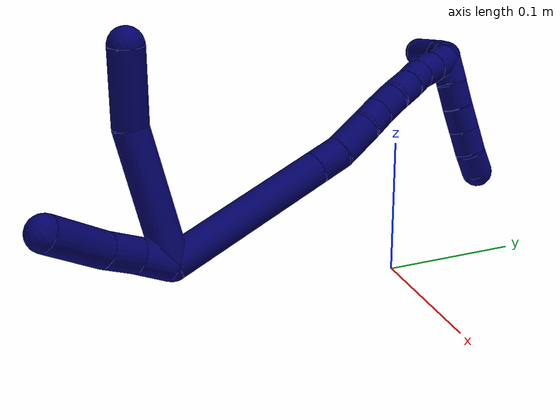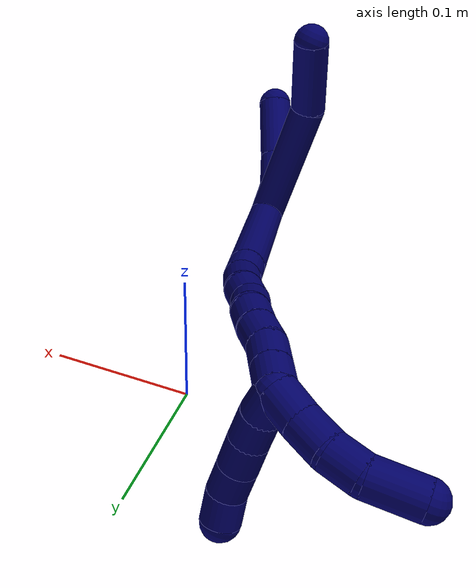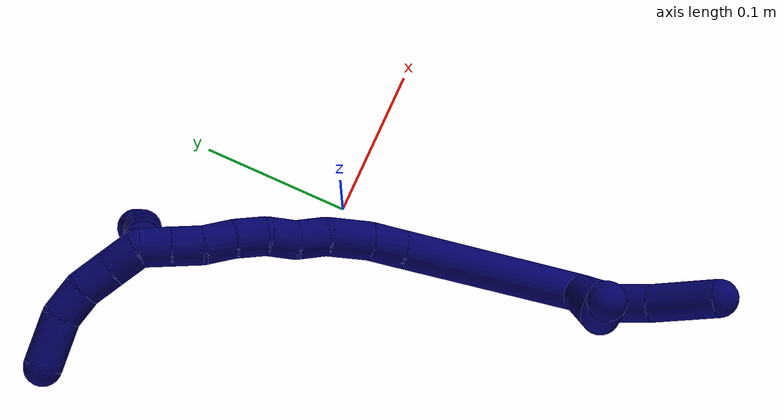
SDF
<sdf version="1.7">
 <world name="default">
  <model name="7">
   <static>0</static>
   <link name="7">
    <collision name="collision-cylinder-e_1_2_8">
     <pose>0.00369 0.010891 0.04611 -0.231955 0.077725 -0.009059</pose>
     <geometry><cylinder><radius>0.0125</radius><length>0.095044</length></cylinder></geometry>
     <surface>
      <friction><ode><mu>1.16</mu><mu2>1.16</mu2><slip1>0</slip1><slip2>0</slip2></ode></friction>
      <contact><ode><kp>1e+06</kp><kd>1</kd><max_vel>0</max_vel><min_depth>0.001</min_depth></ode></contact>
     </surface>
    </collision>
    <visual name="visual-cylinder-e_1_2_8">
     <pose>0.00369 0.010891 0.04611 -0.231955 0.077725 -0.009059</pose>
     <geometry><cylinder><radius>0.0125</radius><length>0.095044</length></cylinder></geometry>
     <material><ambient>0.003922 0 0.403922 1</ambient></material>
    </visual>
    <collision name="collision-cylinder-e_2_8_6">
     <pose>0.017238 0.031055 0.116133 -0.369875 0.366942 -0.069399</pose>
     <geometry><cylinder><radius>0.0125</radius><length>0.054956</length></cylinder></geometry>
     <surface>
      <friction><ode><mu>1.16</mu><mu2>1.16</mu2><slip1>0</slip1><slip2>0</slip2></ode></friction>
      <contact><ode><kp>1e+06</kp><kd>1</kd><max_vel>0</max_vel><min_depth>0.001</min_depth></ode></contact>
     </surface>
    </collision>
    <visual name="visual-cylinder-e_2_8_6">
     <pose>0.017238 0.031055 0.116133 -0.369875 0.366942 -0.069399</pose>
     <geometry><cylinder><radius>0.0125</radius><length>0.054956</length></cylinder></geometry>
     <material><ambient>0.003922 0 0.403922 1</ambient></material>
    </visual>
    <collision name="collision-cylinder-e_1_2_9">
     <pose>0.000245 -0.00868 0.009297 0.751119 0.019262 0.007595</pose>
     <geometry><cylinder><radius>0.0125</radius><length>0.025442</length></cylinder></geometry>
     <surface>
      <friction><ode><mu>1.16</mu><mu2>1.16</mu2><slip1>0</slip1><slip2>0</slip2></ode></friction>
      <contact><ode><kp>1e+06</kp><kd>1</kd><max_vel>0</max_vel><min_depth>0.001</min_depth></ode></contact>
     </surface>
    </collision>
    <visual name="visual-cylinder-e_1_2_9">
     <pose>0.000245 -0.00868 0.009297 0.751119 0.019262 0.007595</pose>
     <geometry><cylinder><radius>0.0125</radius><length>0.025442</length></cylinder></geometry>
     <material><ambient>0.003922 0 0.403922 1</ambient></material>
    </visual>
    <collision name="collision-cylinder-e_2_9_10">
     <pose>0.004191 -0.02676 0.027384 0.81883 0.280039 0.122167</pose>
     <geometry><cylinder><radius>0.0125</radius><length>0.026784</length></cylinder></geometry>
     <surface>
      <friction><ode><mu>1.16</mu><mu2>1.16</mu2><slip1>0</slip1><slip2>0</slip2></ode></friction>
      <contact><ode><kp>1e+06</kp><kd>1</kd><max_vel>0</max_vel><min_depth>0.001</min_depth></ode></contact>
     </surface>
    </collision>
    <visual name="visual-cylinder-e_2_9_10">
     <pose>0.004191 -0.02676 0.027384 0.81883 0.280039 0.122167</pose>
     <geometry><cylinder><radius>0.0125</radius><length>0.026784</length></cylinder></geometry>
     <material><ambient>0.003922 0 0.403922 1</ambient></material>
    </visual>
    <collision name="collision-cylinder-e_3_10_5">
     <pose>0.016207 -0.051081 0.052873 0.729302 0.355513 0.13694</pose>
     <geometry><cylinder><radius>0.0125</radius><length>0.047774</length></cylinder></geometry>
     <surface>
      <friction><ode><mu>1.16</mu><mu2>1.16</mu2><slip1>0</slip1><slip2>0</slip2></ode></friction>
      <contact><ode><kp>1e+06</kp><kd>1</kd><max_vel>0</max_vel><min_depth>0.001</min_depth></ode></contact>
     </surface>
    </collision>
    <visual name="visual-cylinder-e_3_10_5">
     <pose>0.016207 -0.051081 0.052873 0.729302 0.355513 0.13694</pose>
     <geometry><cylinder><radius>0.0125</radius><length>0.047774</length></cylinder></geometry>
     <material><ambient>0.003922 0 0.403922 1</ambient></material>
    </visual>
    <collision name="collision-cylinder-e_1_2_11">
     <pose>0.005305 0.062622 -0.002198 -1.60588 0.084465 -0.087478</pose>
     <geometry><cylinder><radius>0.0125</radius><length>0.12577</length></cylinder></geometry>
     <surface>
      <friction><ode><mu>1.16</mu><mu2>1.16</mu2><slip1>0</slip1><slip2>0</slip2></ode></friction>
      <contact><ode><kp>1e+06</kp><kd>1</kd><max_vel>0</max_vel><min_depth>0.001</min_depth></ode></contact>
     </surface>
    </collision>
    <visual name="visual-cylinder-e_1_2_11">
     <pose>0.005305 0.062622 -0.002198 -1.60588 0.084465 -0.087478</pose>
     <geometry><cylinder><radius>0.0125</radius><length>0.12577</length></cylinder></geometry>
     <material><ambient>0.003922 0 0.403922 1</ambient></material>
    </visual>
    <collision name="collision-cylinder-e_2_11_12">
     <pose>0.011617 0.136577 -0.004787 -1.60528 0.088517 -0.091619</pose>
     <geometry><cylinder><radius>0.0125</radius><length>0.022767</length></cylinder></geometry>
     <surface>
      <friction><ode><mu>1.16</mu><mu2>1.16</mu2><slip1>0</slip1><slip2>0</slip2></ode></friction>
      <contact><ode><kp>1e+06</kp><kd>1</kd><max_vel>0</max_vel><min_depth>0.001</min_depth></ode></contact>
     </surface>
    </collision>
    <visual name="visual-cylinder-e_2_11_12">
     <pose>0.011617 0.136577 -0.004787 -1.60528 0.088517 -0.091619</pose>
     <geometry><cylinder><radius>0.0125</radius><length>0.022767</length></cylinder></geometry>
     <material><ambient>0.003922 0 0.403922 1</ambient></material>
    </visual>
    <collision name="collision-cylinder-e_3_12_13">
     <pose>0.012369 0.162994 -0.003248 -1.44353 -0.016682 0.014684</pose>
     <geometry><cylinder><radius>0.0125</radius><length>0.030419</length></cylinder></geometry>
     <surface>
      <friction><ode><mu>1.16</mu><mu2>1.16</mu2><slip1>0</slip1><slip2>0</slip2></ode></friction>
      <contact><ode><kp>1e+06</kp><kd>1</kd><max_vel>0</max_vel><min_depth>0.001</min_depth></ode></contact>
     </surface>
    </collision>
    <visual name="visual-cylinder-e_3_12_13">
     <pose>0.012369 0.162994 -0.003248 -1.44353 -0.016682 0.014684</pose>
     <geometry><cylinder><radius>0.0125</radius><length>0.030419</length></cylinder></geometry>
     <material><ambient>0.003922 0 0.403922 1</ambient></material>
    </visual>
    <collision name="collision-cylinder-e_4_13_14">
     <pose>0.009634 0.187843 -0.000789 -1.51672 -0.248578 0.235612</pose>
     <geometry><cylinder><radius>0.0125</radius><length>0.020178</length></cylinder></geometry>
     <surface>
      <friction><ode><mu>1.16</mu><mu2>1.16</mu2><slip1>0</slip1><slip2>0</slip2></ode></friction>
      <contact><ode><kp>1e+06</kp><kd>1</kd><max_vel>0</max_vel><min_depth>0.001</min_depth></ode></contact>
     </surface>
    </collision>
    <visual name="visual-cylinder-e_4_13_14">
     <pose>0.009634 0.187843 -0.000789 -1.51672 -0.248578 0.235612</pose>
     <geometry><cylinder><radius>0.0125</radius><length>0.020178</length></cylinder></geometry>
     <material><ambient>0.003922 0 0.403922 1</ambient></material>
    </visual>
    <collision name="collision-cylinder-e_5_14_15">
     <pose>0.007281 0.20765 0.000916 -1.45421 0.012774 -0.011366</pose>
     <geometry><cylinder><radius>0.0125</radius><length>0.020223</length></cylinder></geometry>
     <surface>
      <friction><ode><mu>1.16</mu><mu2>1.16</mu2><slip1>0</slip1><slip2>0</slip2></ode></friction>
      <contact><ode><kp>1e+06</kp><kd>1</kd><max_vel>0</max_vel><min_depth>0.001</min_depth></ode></contact>
     </surface>
    </collision>
    <visual name="visual-cylinder-e_5_14_15">
     <pose>0.007281 0.20765 0.000916 -1.45421 0.012774 -0.011366</pose>
     <geometry><cylinder><radius>0.0125</radius><length>0.020223</length></cylinder></geometry>
     <material><ambient>0.003922 0 0.403922 1</ambient></material>
    </visual>
    <collision name="collision-cylinder-e_6_15_16">
     <pose>0.005 0.227578 0.00183 -1.59726 -0.238968 0.245314</pose>
     <geometry><cylinder><radius>0.0125</radius><length>0.020358</length></cylinder></geometry>
     <surface>
      <friction><ode><mu>1.16</mu><mu2>1.16</mu2><slip1>0</slip1><slip2>0</slip2></ode></friction>
      <contact><ode><kp>1e+06</kp><kd>1</kd><max_vel>0</max_vel><min_depth>0.001</min_depth></ode></contact>
     </surface>
    </collision>
    <visual name="visual-cylinder-e_6_15_16">
     <pose>0.005 0.227578 0.00183 -1.59726 -0.238968 0.245314</pose>
     <geometry><cylinder><radius>0.0125</radius><length>0.020358</length></cylinder></geometry>
     <material><ambient>0.003922 0 0.403922 1</ambient></material>
    </visual>
    <collision name="collision-cylinder-e_7_16_17">
     <pose>-0.000987 0.246944 0.001383 -1.59035 -0.360867 0.367836</pose>
     <geometry><cylinder><radius>0.0125</radius><length>0.020266</length></cylinder></geometry>
     <surface>
      <friction><ode><mu>1.16</mu><mu2>1.16</mu2><slip1>0</slip1><slip2>0</slip2></ode></friction>
      <contact><ode><kp>1e+06</kp><kd>1</kd><max_vel>0</max_vel><min_depth>0.001</min_depth></ode></contact>
     </surface>
    </collision>
    <visual name="visual-cylinder-e_7_16_17">
     <pose>-0.000987 0.246944 0.001383 -1.59035 -0.360867 0.367836</pose>
     <geometry><cylinder><radius>0.0125</radius><length>0.020266</length></cylinder></geometry>
     <material><ambient>0.003922 0 0.403922 1</ambient></material>
    </visual>
    <collision name="collision-cylinder-e_8_17_18">
     <pose>-0.006774 0.266053 -0.000379 -1.73301 -0.222592 0.261567</pose>
     <geometry><cylinder><radius>0.0125</radius><length>0.020012</length></cylinder></geometry>
     <surface>
      <friction><ode><mu>1.16</mu><mu2>1.16</mu2><slip1>0</slip1><slip2>0</slip2></ode></friction>
      <contact><ode><kp>1e+06</kp><kd>1</kd><max_vel>0</max_vel><min_depth>0.001</min_depth></ode></contact>
     </surface>
    </collision>
    <visual name="visual-cylinder-e_8_17_18">
     <pose>-0.006774 0.266053 -0.000379 -1.73301 -0.222592 0.261567</pose>
     <geometry><cylinder><radius>0.0125</radius><length>0.020012</length></cylinder></geometry>
     <material><ambient>0.003922 0 0.403922 1</ambient></material>
    </visual>
    <collision name="collision-cylinder-e_9_18_1">
     <pose>-0.011162 0.285321 -0.003517 -1.73153 -0.219657 0.257747</pose>
     <geometry><cylinder><radius>0.0125</radius><length>0.020005</length></cylinder></geometry>
     <surface>
      <friction><ode><mu>1.16</mu><mu2>1.16</mu2><slip1>0</slip1><slip2>0</slip2></ode></friction>
      <contact><ode><kp>1e+06</kp><kd>1</kd><max_vel>0</max_vel><min_depth>0.001</min_depth></ode></contact>
     </surface>
    </collision>
    <visual name="visual-cylinder-e_9_18_1">
     <pose>-0.011162 0.285321 -0.003517 -1.73153 -0.219657 0.257747</pose>
     <geometry><cylinder><radius>0.0125</radius><length>0.020005</length></cylinder></geometry>
     <material><ambient>0.003922 0 0.403922 1</ambient></material>
    </visual>
    <collision name="collision-cylinder-e_1_1_19">
     <pose>-0.021575 0.301827 -0.007444 -1.90228 -0.847749 1.12796</pose>
     <geometry><cylinder><radius>0.0125</radius><length>0.021961</length></cylinder></geometry>
     <surface>
      <friction><ode><mu>1.16</mu><mu2>1.16</mu2><slip1>0</slip1><slip2>0</slip2></ode></friction>
      <contact><ode><kp>1e+06</kp><kd>1</kd><max_vel>0</max_vel><min_depth>0.001</min_depth></ode></contact>
     </surface>
    </collision>
    <visual name="visual-cylinder-e_1_1_19">
     <pose>-0.021575 0.301827 -0.007444 -1.90228 -0.847749 1.12796</pose>
     <geometry><cylinder><radius>0.0125</radius><length>0.021961</length></cylinder></geometry>
     <material><ambient>0.003922 0 0.403922 1</ambient></material>
    </visual>
    <collision name="collision-cylinder-e_2_19_20">
     <pose>-0.038153 0.316162 -0.010944 -1.72169 -0.835397 0.953363</pose>
     <geometry><cylinder><radius>0.0125</radius><length>0.022508</length></cylinder></geometry>
     <surface>
      <friction><ode><mu>1.16</mu><mu2>1.16</mu2><slip1>0</slip1><slip2>0</slip2></ode></friction>
      <contact><ode><kp>1e+06</kp><kd>1</kd><max_vel>0</max_vel><min_depth>0.001</min_depth></ode></contact>
     </surface>
    </collision>
    <visual name="visual-cylinder-e_2_19_20">
     <pose>-0.038153 0.316162 -0.010944 -1.72169 -0.835397 0.953363</pose>
     <geometry><cylinder><radius>0.0125</radius><length>0.022508</length></cylinder></geometry>
     <material><ambient>0.003922 0 0.403922 1</ambient></material>
    </visual>
    <collision name="collision-cylinder-e_3_20_21">
     <pose>-0.056238 0.328695 -0.012349 -1.62416 -1.09031 1.13823</pose>
     <geometry><cylinder><radius>0.0125</radius><length>0.021965</length></cylinder></geometry>
     <surface>
      <friction><ode><mu>1.16</mu><mu2>1.16</mu2><slip1>0</slip1><slip2>0</slip2></ode></friction>
      <contact><ode><kp>1e+06</kp><kd>1</kd><max_vel>0</max_vel><min_depth>0.001</min_depth></ode></contact>
     </surface>
    </collision>
    <visual name="visual-cylinder-e_3_20_21">
     <pose>-0.056238 0.328695 -0.012349 -1.62416 -1.09031 1.13823</pose>
     <geometry><cylinder><radius>0.0125</radius><length>0.021965</length></cylinder></geometry>
     <material><ambient>0.003922 0 0.403922 1</ambient></material>
    </visual>
    <collision name="collision-cylinder-e_4_21_4">
     <pose>-0.082341 0.336913 -0.01063 -1.00723 -1.34695 0.828442</pose>
     <geometry><cylinder><radius>0.0125</radius><length>0.033566</length></cylinder></geometry>
     <surface>
      <friction><ode><mu>1.16</mu><mu2>1.16</mu2><slip1>0</slip1><slip2>0</slip2></ode></friction>
      <contact><ode><kp>1e+06</kp><kd>1</kd><max_vel>0</max_vel><min_depth>0.001</min_depth></ode></contact>
     </surface>
    </collision>
    <visual name="visual-cylinder-e_4_21_4">
     <pose>-0.082341 0.336913 -0.01063 -1.00723 -1.34695 0.828442</pose>
     <geometry><cylinder><radius>0.0125</radius><length>0.033566</length></cylinder></geometry>
     <material><ambient>0.003922 0 0.403922 1</ambient></material>
    </visual>
    <collision name="collision-cylinder-e_1_1_22">
     <pose>-0.012912 0.291867 -0.01458 2.82714 0.042987 0.269546</pose>
     <geometry><cylinder><radius>0.0125</radius><length>0.02</length></cylinder></geometry>
     <surface>
      <friction><ode><mu>1.16</mu><mu2>1.16</mu2><slip1>0</slip1><slip2>0</slip2></ode></friction>
      <contact><ode><kp>1e+06</kp><kd>1</kd><max_vel>0</max_vel><min_depth>0.001</min_depth></ode></contact>
     </surface>
    </collision>
    <visual name="visual-cylinder-e_1_1_22">
     <pose>-0.012912 0.291867 -0.01458 2.82714 0.042987 0.269546</pose>
     <geometry><cylinder><radius>0.0125</radius><length>0.02</length></cylinder></geometry>
     <material><ambient>0.003922 0 0.403922 1</ambient></material>
    </visual>
    <collision name="collision-cylinder-e_2_22_23">
     <pose>-0.013164 0.286543 -0.033805 2.91571 -0.068207 -0.584373</pose>
     <geometry><cylinder><radius>0.0125</radius><length>0.02</length></cylinder></geometry>
     <surface>
      <friction><ode><mu>1.16</mu><mu2>1.16</mu2><slip1>0</slip1><slip2>0</slip2></ode></friction>
      <contact><ode><kp>1e+06</kp><kd>1</kd><max_vel>0</max_vel><min_depth>0.001</min_depth></ode></contact>
     </surface>
    </collision>
    <visual name="visual-cylinder-e_2_22_23">
     <pose>-0.013164 0.286543 -0.033805 2.91571 -0.068207 -0.584373</pose>
     <geometry><cylinder><radius>0.0125</radius><length>0.02</length></cylinder></geometry>
     <material><ambient>0.003922 0 0.403922 1</ambient></material>
    </visual>
    <collision name="collision-cylinder-e_3_23_24">
     <pose>-0.014695 0.282567 -0.053339 2.96596 -0.08508 -0.90064</pose>
     <geometry><cylinder><radius>0.0125</radius><length>0.02</length></cylinder></geometry>
     <surface>
      <friction><ode><mu>1.16</mu><mu2>1.16</mu2><slip1>0</slip1><slip2>0</slip2></ode></friction>
      <contact><ode><kp>1e+06</kp><kd>1</kd><max_vel>0</max_vel><min_depth>0.001</min_depth></ode></contact>
     </surface>
    </collision>
    <visual name="visual-cylinder-e_3_23_24">
     <pose>-0.014695 0.282567 -0.053339 2.96596 -0.08508 -0.90064</pose>
     <geometry><cylinder><radius>0.0125</radius><length>0.02</length></cylinder></geometry>
     <material><ambient>0.003922 0 0.403922 1</ambient></material>
    </visual>
    <collision name="collision-cylinder-e_4_24_25">
     <pose>-0.016349 0.27899 -0.072946 2.95634 -0.08048 -0.817988</pose>
     <geometry><cylinder><radius>0.0125</radius><length>0.02</length></cylinder></geometry>
     <surface>
      <friction><ode><mu>1.16</mu><mu2>1.16</mu2><slip1>0</slip1><slip2>0</slip2></ode></friction>
      <contact><ode><kp>1e+06</kp><kd>1</kd><max_vel>0</max_vel><min_depth>0.001</min_depth></ode></contact>
     </surface>
    </collision>
    <visual name="visual-cylinder-e_4_24_25">
     <pose>-0.016349 0.27899 -0.072946 2.95634 -0.08048 -0.817988</pose>
     <geometry><cylinder><radius>0.0125</radius><length>0.02</length></cylinder></geometry>
     <material><ambient>0.003922 0 0.403922 1</ambient></material>
    </visual>
    <collision name="collision-cylinder-e_5_25_3">
     <pose>-0.01932 0.277201 -0.092506 -3.13675 -0.218416 3.09744</pose>
     <geometry><cylinder><radius>0.0125</radius><length>0.02</length></cylinder></geometry>
     <surface>
      <friction><ode><mu>1.16</mu><mu2>1.16</mu2><slip1>0</slip1><slip2>0</slip2></ode></friction>
      <contact><ode><kp>1e+06</kp><kd>1</kd><max_vel>0</max_vel><min_depth>0.001</min_depth></ode></contact>
     </surface>
    </collision>
    <visual name="visual-cylinder-e_5_25_3">
     <pose>-0.01932 0.277201 -0.092506 -3.13675 -0.218416 3.09744</pose>
     <geometry><cylinder><radius>0.0125</radius><length>0.02</length></cylinder></geometry>
     <material><ambient>0.003922 0 0.403922 1</ambient></material>
    </visual>
    <collision name="collision-sphere-3">
     <pose>-0.021486 0.277249 -0.102268 0 -0 0</pose>
     <geometry><sphere><radius>0.0125</radius></sphere></geometry>
     <surface>
      <friction><ode><mu>1.16</mu><mu2>1.16</mu2><slip1>0</slip1><slip2>0</slip2></ode></friction>
      <contact><ode><kp>1e+06</kp><kd>1</kd><max_vel>0</max_vel><min_depth>0.001</min_depth></ode></contact>
     </surface>
    </collision>
    <visual name="visual-sphere-3">
     <pose>-0.021486 0.277249 -0.102268 0 -0 0</pose>
     <geometry><sphere><radius>0.0125</radius></sphere></geometry>
     <material><ambient>0.003922 0 0.403922 1</ambient></material>
    </visual>
    <collision name="collision-sphere-25">
     <pose>-0.017153 0.277154 -0.082743 0 -0 0</pose>
     <geometry><sphere><radius>0.0125</radius></sphere></geometry>
     <surface>
      <friction><ode><mu>1.16</mu><mu2>1.16</mu2><slip1>0</slip1><slip2>0</slip2></ode></friction>
      <contact><ode><kp>1e+06</kp><kd>1</kd><max_vel>0</max_vel><min_depth>0.001</min_depth></ode></contact>
     </surface>
    </collision>
    <visual name="visual-sphere-25">
     <pose>-0.017153 0.277154 -0.082743 0 -0 0</pose>
     <geometry><sphere><radius>0.0125</radius></sphere></geometry>
     <material><ambient>0.003922 0 0.403922 1</ambient></material>
    </visual>
    <collision name="collision-sphere-24">
     <pose>-0.015545 0.280826 -0.063149 0 -0 0</pose>
     <geometry><sphere><radius>0.0125</radius></sphere></geometry>
     <surface>
      <friction><ode><mu>1.16</mu><mu2>1.16</mu2><slip1>0</slip1><slip2>0</slip2></ode></friction>
      <contact><ode><kp>1e+06</kp><kd>1</kd><max_vel>0</max_vel><min_depth>0.001</min_depth></ode></contact>
     </surface>
    </collision>
    <visual name="visual-sphere-24">
     <pose>-0.015545 0.280826 -0.063149 0 -0 0</pose>
     <geometry><sphere><radius>0.0125</radius></sphere></geometry>
     <material><ambient>0.003922 0 0.403922 1</ambient></material>
    </visual>
    <collision name="collision-sphere-23">
     <pose>-0.013845 0.284308 -0.043528 0 -0 0</pose>
     <geometry><sphere><radius>0.0125</radius></sphere></geometry>
     <surface>
      <friction><ode><mu>1.16</mu><mu2>1.16</mu2><slip1>0</slip1><slip2>0</slip2></ode></friction>
      <contact><ode><kp>1e+06</kp><kd>1</kd><max_vel>0</max_vel><min_depth>0.001</min_depth></ode></contact>
     </surface>
    </collision>
    <visual name="visual-sphere-23">
     <pose>-0.013845 0.284308 -0.043528 0 -0 0</pose>
     <geometry><sphere><radius>0.0125</radius></sphere></geometry>
     <material><ambient>0.003922 0 0.403922 1</ambient></material>
    </visual>
    <collision name="collision-sphere-22">
     <pose>-0.012482 0.288777 -0.024081 0 -0 0</pose>
     <geometry><sphere><radius>0.0125</radius></sphere></geometry>
     <surface>
      <friction><ode><mu>1.16</mu><mu2>1.16</mu2><slip1>0</slip1><slip2>0</slip2></ode></friction>
      <contact><ode><kp>1e+06</kp><kd>1</kd><max_vel>0</max_vel><min_depth>0.001</min_depth></ode></contact>
     </surface>
    </collision>
    <visual name="visual-sphere-22">
     <pose>-0.012482 0.288777 -0.024081 0 -0 0</pose>
     <geometry><sphere><radius>0.0125</radius></sphere></geometry>
     <material><ambient>0.003922 0 0.403922 1</ambient></material>
    </visual>
    <collision name="collision-sphere-4">
     <pose>-0.098705 0.340063 -0.00864 0 -0 0</pose>
     <geometry><sphere><radius>0.0125</radius></sphere></geometry>
     <surface>
      <friction><ode><mu>1.16</mu><mu2>1.16</mu2><slip1>0</slip1><slip2>0</slip2></ode></friction>
      <contact><ode><kp>1e+06</kp><kd>1</kd><max_vel>0</max_vel><min_depth>0.001</min_depth></ode></contact>
     </surface>
    </collision>
    <visual name="visual-sphere-4">
     <pose>-0.098705 0.340063 -0.00864 0 -0 0</pose>
     <geometry><sphere><radius>0.0125</radius></sphere></geometry>
     <material><ambient>0.003922 0 0.403922 1</ambient></material>
    </visual>
    <collision name="collision-sphere-21">
     <pose>-0.065977 0.333764 -0.01262 0 -0 0</pose>
     <geometry><sphere><radius>0.0125</radius></sphere></geometry>
     <surface>
      <friction><ode><mu>1.16</mu><mu2>1.16</mu2><slip1>0</slip1><slip2>0</slip2></ode></friction>
      <contact><ode><kp>1e+06</kp><kd>1</kd><max_vel>0</max_vel><min_depth>0.001</min_depth></ode></contact>
     </surface>
    </collision>
    <visual name="visual-sphere-21">
     <pose>-0.065977 0.333764 -0.01262 0 -0 0</pose>
     <geometry><sphere><radius>0.0125</radius></sphere></geometry>
     <material><ambient>0.003922 0 0.403922 1</ambient></material>
    </visual>
    <collision name="collision-sphere-20">
     <pose>-0.046499 0.323626 -0.012079 0 -0 0</pose>
     <geometry><sphere><radius>0.0125</radius></sphere></geometry>
     <surface>
      <friction><ode><mu>1.16</mu><mu2>1.16</mu2><slip1>0</slip1><slip2>0</slip2></ode></friction>
      <contact><ode><kp>1e+06</kp><kd>1</kd><max_vel>0</max_vel><min_depth>0.001</min_depth></ode></contact>
     </surface>
    </collision>
    <visual name="visual-sphere-20">
     <pose>-0.046499 0.323626 -0.012079 0 -0 0</pose>
     <geometry><sphere><radius>0.0125</radius></sphere></geometry>
     <material><ambient>0.003922 0 0.403922 1</ambient></material>
    </visual>
    <collision name="collision-sphere-5">
     <pose>0.024522 -0.066003 0.06957 0 -0 0</pose>
     <geometry><sphere><radius>0.0125</radius></sphere></geometry>
     <surface>
      <friction><ode><mu>1.16</mu><mu2>1.16</mu2><slip1>0</slip1><slip2>0</slip2></ode></friction>
      <contact><ode><kp>1e+06</kp><kd>1</kd><max_vel>0</max_vel><min_depth>0.001</min_depth></ode></contact>
     </surface>
    </collision>
    <visual name="visual-sphere-5">
     <pose>0.024522 -0.066003 0.06957 0 -0 0</pose>
     <geometry><sphere><radius>0.0125</radius></sphere></geometry>
     <material><ambient>0.003922 0 0.403922 1</ambient></material>
    </visual>
    <collision name="collision-sphere-10">
     <pose>0.007893 -0.03616 0.036176 0 -0 0</pose>
     <geometry><sphere><radius>0.0125</radius></sphere></geometry>
     <surface>
      <friction><ode><mu>1.16</mu><mu2>1.16</mu2><slip1>0</slip1><slip2>0</slip2></ode></friction>
      <contact><ode><kp>1e+06</kp><kd>1</kd><max_vel>0</max_vel><min_depth>0.001</min_depth></ode></contact>
     </surface>
    </collision>
    <visual name="visual-sphere-10">
     <pose>0.007893 -0.03616 0.036176 0 -0 0</pose>
     <geometry><sphere><radius>0.0125</radius></sphere></geometry>
     <material><ambient>0.003922 0 0.403922 1</ambient></material>
    </visual>
    <collision name="collision-sphere-6">
     <pose>0.027096 0.040327 0.140048 0 -0 0</pose>
     <geometry><sphere><radius>0.0125</radius></sphere></geometry>
     <surface>
      <friction><ode><mu>1.16</mu><mu2>1.16</mu2><slip1>0</slip1><slip2>0</slip2></ode></friction>
      <contact><ode><kp>1e+06</kp><kd>1</kd><max_vel>0</max_vel><min_depth>0.001</min_depth></ode></contact>
     </surface>
    </collision>
    <visual name="visual-sphere-6">
     <pose>0.027096 0.040327 0.140048 0 -0 0</pose>
     <geometry><sphere><radius>0.0125</radius></sphere></geometry>
     <material><ambient>0.003922 0 0.403922 1</ambient></material>
    </visual>
    <collision name="collision-sphere-9">
     <pose>0.00049 -0.01736 0.018593 0 -0 0</pose>
     <geometry><sphere><radius>0.0125</radius></sphere></geometry>
     <surface>
      <friction><ode><mu>1.16</mu><mu2>1.16</mu2><slip1>0</slip1><slip2>0</slip2></ode></friction>
      <contact><ode><kp>1e+06</kp><kd>1</kd><max_vel>0</max_vel><min_depth>0.001</min_depth></ode></contact>
     </surface>
    </collision>
    <visual name="visual-sphere-9">
     <pose>0.00049 -0.01736 0.018593 0 -0 0</pose>
     <geometry><sphere><radius>0.0125</radius></sphere></geometry>
     <material><ambient>0.003922 0 0.403922 1</ambient></material>
    </visual>
    <collision name="collision-sphere-2">
     <geometry><sphere><radius>0.0125</radius></sphere></geometry>
     <surface>
      <friction><ode><mu>1.16</mu><mu2>1.16</mu2><slip1>0</slip1><slip2>0</slip2></ode></friction>
      <contact><ode><kp>1e+06</kp><kd>1</kd><max_vel>0</max_vel><min_depth>0.001</min_depth></ode></contact>
     </surface>
    </collision>
    <visual name="visual-sphere-2">
     <geometry><sphere><radius>0.0125</radius></sphere></geometry>
     <material><ambient>0.003922 0 0.403922 1</ambient></material>
    </visual>
    <collision name="collision-sphere-19">
     <pose>-0.029808 0.308697 -0.009809 0 -0 0</pose>
     <geometry><sphere><radius>0.0125</radius></sphere></geometry>
     <surface>
      <friction><ode><mu>1.16</mu><mu2>1.16</mu2><slip1>0</slip1><slip2>0</slip2></ode></friction>
      <contact><ode><kp>1e+06</kp><kd>1</kd><max_vel>0</max_vel><min_depth>0.001</min_depth></ode></contact>
     </surface>
    </collision>
    <visual name="visual-sphere-19">
     <pose>-0.029808 0.308697 -0.009809 0 -0 0</pose>
     <geometry><sphere><radius>0.0125</radius></sphere></geometry>
     <material><ambient>0.003922 0 0.403922 1</ambient></material>
    </visual>
    <collision name="collision-sphere-8">
     <pose>0.00738 0.021783 0.092219 0 -0 0</pose>
     <geometry><sphere><radius>0.0125</radius></sphere></geometry>
     <surface>
      <friction><ode><mu>1.16</mu><mu2>1.16</mu2><slip1>0</slip1><slip2>0</slip2></ode></friction>
      <contact><ode><kp>1e+06</kp><kd>1</kd><max_vel>0</max_vel><min_depth>0.001</min_depth></ode></contact>
     </surface>
    </collision>
    <visual name="visual-sphere-8">
     <pose>0.00738 0.021783 0.092219 0 -0 0</pose>
     <geometry><sphere><radius>0.0125</radius></sphere></geometry>
     <material><ambient>0.003922 0 0.403922 1</ambient></material>
    </visual>
    <collision name="collision-sphere-11">
     <pose>0.010611 0.125244 -0.004396 0 -0 0</pose>
     <geometry><sphere><radius>0.0125</radius></sphere></geometry>
     <surface>
      <friction><ode><mu>1.16</mu><mu2>1.16</mu2><slip1>0</slip1><slip2>0</slip2></ode></friction>
      <contact><ode><kp>1e+06</kp><kd>1</kd><max_vel>0</max_vel><min_depth>0.001</min_depth></ode></contact>
     </surface>
    </collision>
    <visual name="visual-sphere-11">
     <pose>0.010611 0.125244 -0.004396 0 -0 0</pose>
     <geometry><sphere><radius>0.0125</radius></sphere></geometry>
     <material><ambient>0.003922 0 0.403922 1</ambient></material>
    </visual>
    <collision name="collision-sphere-12">
     <pose>0.012623 0.147909 -0.005178 0 -0 0</pose>
     <geometry><sphere><radius>0.0125</radius></sphere></geometry>
     <surface>
      <friction><ode><mu>1.16</mu><mu2>1.16</mu2><slip1>0</slip1><slip2>0</slip2></ode></friction>
      <contact><ode><kp>1e+06</kp><kd>1</kd><max_vel>0</max_vel><min_depth>0.001</min_depth></ode></contact>
     </surface>
    </collision>
    <visual name="visual-sphere-12">
     <pose>0.012623 0.147909 -0.005178 0 -0 0</pose>
     <geometry><sphere><radius>0.0125</radius></sphere></geometry>
     <material><ambient>0.003922 0 0.403922 1</ambient></material>
    </visual>
    <collision name="collision-sphere-13">
     <pose>0.012116 0.178078 -0.001318 0 -0 0</pose>
     <geometry><sphere><radius>0.0125</radius></sphere></geometry>
     <surface>
      <friction><ode><mu>1.16</mu><mu2>1.16</mu2><slip1>0</slip1><slip2>0</slip2></ode></friction>
      <contact><ode><kp>1e+06</kp><kd>1</kd><max_vel>0</max_vel><min_depth>0.001</min_depth></ode></contact>
     </surface>
    </collision>
    <visual name="visual-sphere-13">
     <pose>0.012116 0.178078 -0.001318 0 -0 0</pose>
     <geometry><sphere><radius>0.0125</radius></sphere></geometry>
     <material><ambient>0.003922 0 0.403922 1</ambient></material>
    </visual>
    <collision name="collision-sphere-14">
     <pose>0.007151 0.197607 -0.000261 0 -0 0</pose>
     <geometry><sphere><radius>0.0125</radius></sphere></geometry>
     <surface>
      <friction><ode><mu>1.16</mu><mu2>1.16</mu2><slip1>0</slip1><slip2>0</slip2></ode></friction>
      <contact><ode><kp>1e+06</kp><kd>1</kd><max_vel>0</max_vel><min_depth>0.001</min_depth></ode></contact>
     </surface>
    </collision>
    <visual name="visual-sphere-14">
     <pose>0.007151 0.197607 -0.000261 0 -0 0</pose>
     <geometry><sphere><radius>0.0125</radius></sphere></geometry>
     <material><ambient>0.003922 0 0.403922 1</ambient></material>
    </visual>
    <collision name="collision-sphere-15">
     <pose>0.00741 0.217692 0.002092 0 -0 0</pose>
     <geometry><sphere><radius>0.0125</radius></sphere></geometry>
     <surface>
      <friction><ode><mu>1.16</mu><mu2>1.16</mu2><slip1>0</slip1><slip2>0</slip2></ode></friction>
      <contact><ode><kp>1e+06</kp><kd>1</kd><max_vel>0</max_vel><min_depth>0.001</min_depth></ode></contact>
     </surface>
    </collision>
    <visual name="visual-sphere-15">
     <pose>0.00741 0.217692 0.002092 0 -0 0</pose>
     <geometry><sphere><radius>0.0125</radius></sphere></geometry>
     <material><ambient>0.003922 0 0.403922 1</ambient></material>
    </visual>
    <collision name="collision-sphere-16">
     <pose>0.002591 0.237465 0.001568 0 -0 0</pose>
     <geometry><sphere><radius>0.0125</radius></sphere></geometry>
     <surface>
      <friction><ode><mu>1.16</mu><mu2>1.16</mu2><slip1>0</slip1><slip2>0</slip2></ode></friction>
      <contact><ode><kp>1e+06</kp><kd>1</kd><max_vel>0</max_vel><min_depth>0.001</min_depth></ode></contact>
     </surface>
    </collision>
    <visual name="visual-sphere-16">
     <pose>0.002591 0.237465 0.001568 0 -0 0</pose>
     <geometry><sphere><radius>0.0125</radius></sphere></geometry>
     <material><ambient>0.003922 0 0.403922 1</ambient></material>
    </visual>
    <collision name="collision-sphere-17">
     <pose>-0.004565 0.256422 0.001198 0 -0 0</pose>
     <geometry><sphere><radius>0.0125</radius></sphere></geometry>
     <surface>
      <friction><ode><mu>1.16</mu><mu2>1.16</mu2><slip1>0</slip1><slip2>0</slip2></ode></friction>
      <contact><ode><kp>1e+06</kp><kd>1</kd><max_vel>0</max_vel><min_depth>0.001</min_depth></ode></contact>
     </surface>
    </collision>
    <visual name="visual-sphere-17">
     <pose>-0.004565 0.256422 0.001198 0 -0 0</pose>
     <geometry><sphere><radius>0.0125</radius></sphere></geometry>
     <material><ambient>0.003922 0 0.403922 1</ambient></material>
    </visual>
    <collision name="collision-sphere-18">
     <pose>-0.008983 0.275684 -0.001955 0 -0 0</pose>
     <geometry><sphere><radius>0.0125</radius></sphere></geometry>
     <surface>
      <friction><ode><mu>1.16</mu><mu2>1.16</mu2><slip1>0</slip1><slip2>0</slip2></ode></friction>
      <contact><ode><kp>1e+06</kp><kd>1</kd><max_vel>0</max_vel><min_depth>0.001</min_depth></ode></contact>
     </surface>
    </collision>
    <visual name="visual-sphere-18">
     <pose>-0.008983 0.275684 -0.001955 0 -0 0</pose>
     <geometry><sphere><radius>0.0125</radius></sphere></geometry>
     <material><ambient>0.003922 0 0.403922 1</ambient></material>
    </visual>
    <collision name="collision-sphere-1">
     <pose>-0.013342 0.294957 -0.00508 0 -0 0</pose>
     <geometry><sphere><radius>0.0125</radius></sphere></geometry>
     <surface>
      <friction><ode><mu>1.16</mu><mu2>1.16</mu2><slip1>0</slip1><slip2>0</slip2></ode></friction>
      <contact><ode><kp>1e+06</kp><kd>1</kd><max_vel>0</max_vel><min_depth>0.001</min_depth></ode></contact>
     </surface>
    </collision>
    <visual name="visual-sphere-1">
     <pose>-0.013342 0.294957 -0.00508 0 -0 0</pose>
     <geometry><sphere><radius>0.0125</radius></sphere></geometry>
     <material><ambient>0.003922 0 0.403922 1</ambient></material>
    </visual>
    <inertial>
     <pose>-0.004396 0.139445 0.009847 0 -0 0</pose>
     <mass>0.75</mass>
     <inertia>
      <ixx>0.000277</ixx>
      <ixy>0</ixy>
      <ixz>0</ixz>
      <iyy>0.000112</iyy>
      <iyz>0</iyz>
      <izz>-0.00021</izz>
     </inertia>
    </inertial>
   </link>
   <pose>0.006472 -0.168556 0.040177 0.358492 -0.359776 0.203532</pose>
  </model>
 </world>
</sdf>
